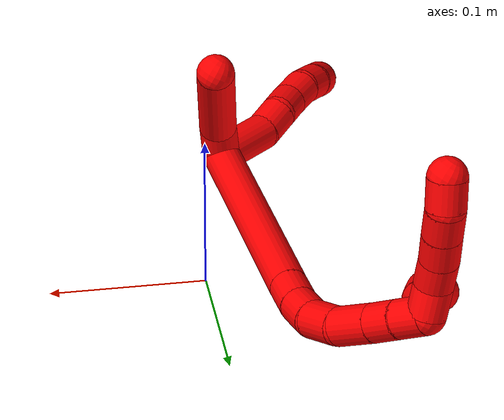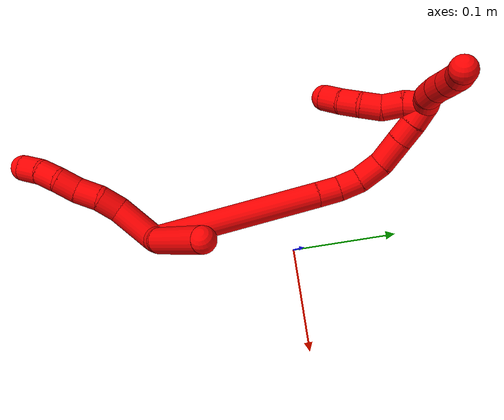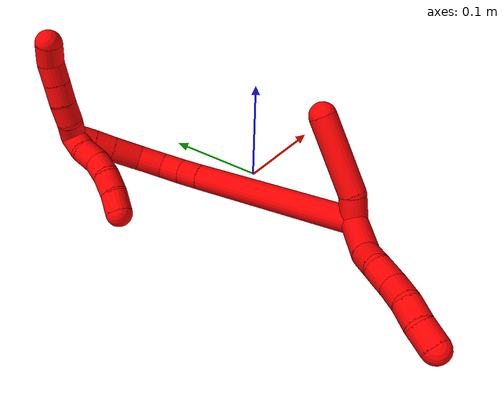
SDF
<sdf version="1.7">
 <world name="default">
  <model name="2">
   <static>0</static>
   <link name="2">
    <collision name="collision-cylinder-e_1_2_8">
     <pose>-0.014928 -0.013431 0.009488 0.955743 -0.737116 -0.394827</pose>
     <geometry><cylinder><radius>0.0125</radius><length>0.04442</length></cylinder></geometry>
     <surface>
      <friction><ode><mu>1.16</mu><mu2>1.16</mu2><slip1>0</slip1><slip2>0</slip2></ode></friction>
      <contact><ode><kp>1e+06</kp><kd>1</kd><max_vel>0</max_vel><min_depth>0.001</min_depth></ode></contact>
     </surface>
    </collision>
    <visual name="visual-cylinder-e_1_2_8">
     <pose>-0.014928 -0.013431 0.009488 0.955743 -0.737116 -0.394827</pose>
     <geometry><cylinder><radius>0.0125</radius><length>0.04442</length></cylinder></geometry>
     <material><ambient>1 0 0 1</ambient></material>
    </visual>
    <collision name="collision-cylinder-e_2_8_9">
     <pose>-0.03479 -0.034329 0.025045 0.888397 -0.473718 -0.228762</pose>
     <geometry><cylinder><radius>0.0125</radius><length>0.021626</length></cylinder></geometry>
     <surface>
      <friction><ode><mu>1.16</mu><mu2>1.16</mu2><slip1>0</slip1><slip2>0</slip2></ode></friction>
      <contact><ode><kp>1e+06</kp><kd>1</kd><max_vel>0</max_vel><min_depth>0.001</min_depth></ode></contact>
     </surface>
    </collision>
    <visual name="visual-cylinder-e_2_8_9">
     <pose>-0.03479 -0.034329 0.025045 0.888397 -0.473718 -0.228762</pose>
     <geometry><cylinder><radius>0.0125</radius><length>0.021626</length></cylinder></geometry>
     <material><ambient>1 0 0 1</ambient></material>
    </visual>
    <collision name="collision-cylinder-e_3_9_10">
     <pose>-0.045016 -0.051248 0.034188 1.25627 -0.489379 -0.358784</pose>
     <geometry><cylinder><radius>0.0125</radius><length>0.022522</length></cylinder></geometry>
     <surface>
      <friction><ode><mu>1.16</mu><mu2>1.16</mu2><slip1>0</slip1><slip2>0</slip2></ode></friction>
      <contact><ode><kp>1e+06</kp><kd>1</kd><max_vel>0</max_vel><min_depth>0.001</min_depth></ode></contact>
     </surface>
    </collision>
    <visual name="visual-cylinder-e_3_9_10">
     <pose>-0.045016 -0.051248 0.034188 1.25627 -0.489379 -0.358784</pose>
     <geometry><cylinder><radius>0.0125</radius><length>0.022522</length></cylinder></geometry>
     <material><ambient>1 0 0 1</ambient></material>
    </visual>
    <collision name="collision-cylinder-e_4_10_11">
     <pose>-0.055665 -0.068514 0.041804 1.04442 -0.534901 -0.312814</pose>
     <geometry><cylinder><radius>0.0125</radius><length>0.02101</length></cylinder></geometry>
     <surface>
      <friction><ode><mu>1.16</mu><mu2>1.16</mu2><slip1>0</slip1><slip2>0</slip2></ode></friction>
      <contact><ode><kp>1e+06</kp><kd>1</kd><max_vel>0</max_vel><min_depth>0.001</min_depth></ode></contact>
     </surface>
    </collision>
    <visual name="visual-cylinder-e_4_10_11">
     <pose>-0.055665 -0.068514 0.041804 1.04442 -0.534901 -0.312814</pose>
     <geometry><cylinder><radius>0.0125</radius><length>0.02101</length></cylinder></geometry>
     <material><ambient>1 0 0 1</ambient></material>
    </visual>
    <collision name="collision-cylinder-e_5_11_12">
     <pose>-0.067173 -0.084125 0.047938 1.36924 -0.658191 -0.54377</pose>
     <geometry><cylinder><radius>0.0125</radius><length>0.020118</length></cylinder></geometry>
     <surface>
      <friction><ode><mu>1.16</mu><mu2>1.16</mu2><slip1>0</slip1><slip2>0</slip2></ode></friction>
      <contact><ode><kp>1e+06</kp><kd>1</kd><max_vel>0</max_vel><min_depth>0.001</min_depth></ode></contact>
     </surface>
    </collision>
    <visual name="visual-cylinder-e_5_11_12">
     <pose>-0.067173 -0.084125 0.047938 1.36924 -0.658191 -0.54377</pose>
     <geometry><cylinder><radius>0.0125</radius><length>0.020118</length></cylinder></geometry>
     <material><ambient>1 0 0 1</ambient></material>
    </visual>
    <collision name="collision-cylinder-e_6_12_6">
     <pose>-0.078593 -0.100588 0.049074 1.62347 -0.545515 -0.573478</pose>
     <geometry><cylinder><radius>0.0125</radius><length>0.020305</length></cylinder></geometry>
     <surface>
      <friction><ode><mu>1.16</mu><mu2>1.16</mu2><slip1>0</slip1><slip2>0</slip2></ode></friction>
      <contact><ode><kp>1e+06</kp><kd>1</kd><max_vel>0</max_vel><min_depth>0.001</min_depth></ode></contact>
     </surface>
    </collision>
    <visual name="visual-cylinder-e_6_12_6">
     <pose>-0.078593 -0.100588 0.049074 1.62347 -0.545515 -0.573478</pose>
     <geometry><cylinder><radius>0.0125</radius><length>0.020305</length></cylinder></geometry>
     <material><ambient>1 0 0 1</ambient></material>
    </visual>
    <collision name="collision-cylinder-e_1_2_13">
     <pose>0.007664 0.004004 0.009666 -0.392723 0.632219 -0.129944</pose>
     <geometry><cylinder><radius>0.0125</radius><length>0.025938</length></cylinder></geometry>
     <surface>
      <friction><ode><mu>1.16</mu><mu2>1.16</mu2><slip1>0</slip1><slip2>0</slip2></ode></friction>
      <contact><ode><kp>1e+06</kp><kd>1</kd><max_vel>0</max_vel><min_depth>0.001</min_depth></ode></contact>
     </surface>
    </collision>
    <visual name="visual-cylinder-e_1_2_13">
     <pose>0.007664 0.004004 0.009666 -0.392723 0.632219 -0.129944</pose>
     <geometry><cylinder><radius>0.0125</radius><length>0.025938</length></cylinder></geometry>
     <material><ambient>1 0 0 1</ambient></material>
    </visual>
    <collision name="collision-cylinder-e_2_13_5">
     <pose>0.034403 0.030447 0.04178 -0.785185 0.541159 -0.228719</pose>
     <geometry><cylinder><radius>0.0125</radius><length>0.074062</length></cylinder></geometry>
     <surface>
      <friction><ode><mu>1.16</mu><mu2>1.16</mu2><slip1>0</slip1><slip2>0</slip2></ode></friction>
      <contact><ode><kp>1e+06</kp><kd>1</kd><max_vel>0</max_vel><min_depth>0.001</min_depth></ode></contact>
     </surface>
    </collision>
    <visual name="visual-cylinder-e_2_13_5">
     <pose>0.034403 0.030447 0.04178 -0.785185 0.541159 -0.228719</pose>
     <geometry><cylinder><radius>0.0125</radius><length>0.074062</length></cylinder></geometry>
     <material><ambient>1 0 0 1</ambient></material>
    </visual>
    <collision name="collision-cylinder-e_1_2_14">
     <pose>-0.008221 0.080078 -0.008154 -1.67228 -0.101778 0.112647</pose>
     <geometry><cylinder><radius>0.0125</radius><length>0.161822</length></cylinder></geometry>
     <surface>
      <friction><ode><mu>1.16</mu><mu2>1.16</mu2><slip1>0</slip1><slip2>0</slip2></ode></friction>
      <contact><ode><kp>1e+06</kp><kd>1</kd><max_vel>0</max_vel><min_depth>0.001</min_depth></ode></contact>
     </surface>
    </collision>
    <visual name="visual-cylinder-e_1_2_14">
     <pose>-0.008221 0.080078 -0.008154 -1.67228 -0.101778 0.112647</pose>
     <geometry><cylinder><radius>0.0125</radius><length>0.161822</length></cylinder></geometry>
     <material><ambient>1 0 0 1</ambient></material>
    </visual>
    <collision name="collision-cylinder-e_2_14_15">
     <pose>-0.017551 0.170901 -0.017166 -1.65036 -0.10262 0.11111</pose>
     <geometry><cylinder><radius>0.0125</radius><length>0.021671</length></cylinder></geometry>
     <surface>
      <friction><ode><mu>1.16</mu><mu2>1.16</mu2><slip1>0</slip1><slip2>0</slip2></ode></friction>
      <contact><ode><kp>1e+06</kp><kd>1</kd><max_vel>0</max_vel><min_depth>0.001</min_depth></ode></contact>
     </surface>
    </collision>
    <visual name="visual-cylinder-e_2_14_15">
     <pose>-0.017551 0.170901 -0.017166 -1.65036 -0.10262 0.11111</pose>
     <geometry><cylinder><radius>0.0125</radius><length>0.021671</length></cylinder></geometry>
     <material><ambient>1 0 0 1</ambient></material>
    </visual>
    <collision name="collision-cylinder-e_3_15_16">
     <pose>-0.020165 0.192218 -0.017124 -1.48607 -0.140805 0.129387</pose>
     <geometry><cylinder><radius>0.0125</radius><length>0.021433</length></cylinder></geometry>
     <surface>
      <friction><ode><mu>1.16</mu><mu2>1.16</mu2><slip1>0</slip1><slip2>0</slip2></ode></friction>
      <contact><ode><kp>1e+06</kp><kd>1</kd><max_vel>0</max_vel><min_depth>0.001</min_depth></ode></contact>
     </surface>
    </collision>
    <visual name="visual-cylinder-e_3_15_16">
     <pose>-0.020165 0.192218 -0.017124 -1.48607 -0.140805 0.129387</pose>
     <geometry><cylinder><radius>0.0125</radius><length>0.021433</length></cylinder></geometry>
     <material><ambient>1 0 0 1</ambient></material>
    </visual>
    <collision name="collision-cylinder-e_4_16_17">
     <pose>-0.024795 0.214497 -0.011505 -1.18745 -0.242712 0.164261</pose>
     <geometry><cylinder><radius>0.0125</radius><length>0.026008</length></cylinder></geometry>
     <surface>
      <friction><ode><mu>1.16</mu><mu2>1.16</mu2><slip1>0</slip1><slip2>0</slip2></ode></friction>
      <contact><ode><kp>1e+06</kp><kd>1</kd><max_vel>0</max_vel><min_depth>0.001</min_depth></ode></contact>
     </surface>
    </collision>
    <visual name="visual-cylinder-e_4_16_17">
     <pose>-0.024795 0.214497 -0.011505 -1.18745 -0.242712 0.164261</pose>
     <geometry><cylinder><radius>0.0125</radius><length>0.026008</length></cylinder></geometry>
     <material><ambient>1 0 0 1</ambient></material>
    </visual>
    <collision name="collision-cylinder-e_5_17_18">
     <pose>-0.032501 0.236624 0.002 -0.870443 -0.324256 0.151807</pose>
     <geometry><cylinder><radius>0.0125</radius><length>0.028756</length></cylinder></geometry>
     <surface>
      <friction><ode><mu>1.16</mu><mu2>1.16</mu2><slip1>0</slip1><slip2>0</slip2></ode></friction>
      <contact><ode><kp>1e+06</kp><kd>1</kd><max_vel>0</max_vel><min_depth>0.001</min_depth></ode></contact>
     </surface>
    </collision>
    <visual name="visual-cylinder-e_5_17_18">
     <pose>-0.032501 0.236624 0.002 -0.870443 -0.324256 0.151807</pose>
     <geometry><cylinder><radius>0.0125</radius><length>0.028756</length></cylinder></geometry>
     <material><ambient>1 0 0 1</ambient></material>
    </visual>
    <collision name="collision-cylinder-e_6_18_19">
     <pose>-0.039991 0.254229 0.017181 -0.843187 -0.293661 0.132463</pose>
     <geometry><cylinder><radius>0.0125</radius><length>0.020099</length></cylinder></geometry>
     <surface>
      <friction><ode><mu>1.16</mu><mu2>1.16</mu2><slip1>0</slip1><slip2>0</slip2></ode></friction>
      <contact><ode><kp>1e+06</kp><kd>1</kd><max_vel>0</max_vel><min_depth>0.001</min_depth></ode></contact>
     </surface>
    </collision>
    <visual name="visual-cylinder-e_6_18_19">
     <pose>-0.039991 0.254229 0.017181 -0.843187 -0.293661 0.132463</pose>
     <geometry><cylinder><radius>0.0125</radius><length>0.020099</length></cylinder></geometry>
     <material><ambient>1 0 0 1</ambient></material>
    </visual>
    <collision name="collision-cylinder-e_7_19_1">
     <pose>-0.046526 0.268189 0.030139 -0.801641 -0.367014 0.156973</pose>
     <geometry><cylinder><radius>0.0125</radius><length>0.02021</length></cylinder></geometry>
     <surface>
      <friction><ode><mu>1.16</mu><mu2>1.16</mu2><slip1>0</slip1><slip2>0</slip2></ode></friction>
      <contact><ode><kp>1e+06</kp><kd>1</kd><max_vel>0</max_vel><min_depth>0.001</min_depth></ode></contact>
     </surface>
    </collision>
    <visual name="visual-cylinder-e_7_19_1">
     <pose>-0.046526 0.268189 0.030139 -0.801641 -0.367014 0.156973</pose>
     <geometry><cylinder><radius>0.0125</radius><length>0.02021</length></cylinder></geometry>
     <material><ambient>1 0 0 1</ambient></material>
    </visual>
    <collision name="collision-cylinder-e_1_1_20">
     <pose>-0.047176 0.274806 0.046245 0.016808 0.302145 0.002559</pose>
     <geometry><cylinder><radius>0.0125</radius><length>0.02</length></cylinder></geometry>
     <surface>
      <friction><ode><mu>1.16</mu><mu2>1.16</mu2><slip1>0</slip1><slip2>0</slip2></ode></friction>
      <contact><ode><kp>1e+06</kp><kd>1</kd><max_vel>0</max_vel><min_depth>0.001</min_depth></ode></contact>
     </surface>
    </collision>
    <visual name="visual-cylinder-e_1_1_20">
     <pose>-0.047176 0.274806 0.046245 0.016808 0.302145 0.002559</pose>
     <geometry><cylinder><radius>0.0125</radius><length>0.02</length></cylinder></geometry>
     <material><ambient>1 0 0 1</ambient></material>
    </visual>
    <collision name="collision-cylinder-e_2_20_21">
     <pose>-0.040156 0.277417 0.064506 -0.307948 0.416375 -0.065549</pose>
     <geometry><cylinder><radius>0.0125</radius><length>0.02</length></cylinder></geometry>
     <surface>
      <friction><ode><mu>1.16</mu><mu2>1.16</mu2><slip1>0</slip1><slip2>0</slip2></ode></friction>
      <contact><ode><kp>1e+06</kp><kd>1</kd><max_vel>0</max_vel><min_depth>0.001</min_depth></ode></contact>
     </surface>
    </collision>
    <visual name="visual-cylinder-e_2_20_21">
     <pose>-0.040156 0.277417 0.064506 -0.307948 0.416375 -0.065549</pose>
     <geometry><cylinder><radius>0.0125</radius><length>0.02</length></cylinder></geometry>
     <material><ambient>1 0 0 1</ambient></material>
    </visual>
    <collision name="collision-cylinder-e_3_21_22">
     <pose>-0.03127 0.283144 0.081457 -0.344499 0.505407 -0.089788</pose>
     <geometry><cylinder><radius>0.0125</radius><length>0.02</length></cylinder></geometry>
     <surface>
      <friction><ode><mu>1.16</mu><mu2>1.16</mu2><slip1>0</slip1><slip2>0</slip2></ode></friction>
      <contact><ode><kp>1e+06</kp><kd>1</kd><max_vel>0</max_vel><min_depth>0.001</min_depth></ode></contact>
     </surface>
    </collision>
    <visual name="visual-cylinder-e_3_21_22">
     <pose>-0.03127 0.283144 0.081457 -0.344499 0.505407 -0.089788</pose>
     <geometry><cylinder><radius>0.0125</radius><length>0.02</length></cylinder></geometry>
     <material><ambient>1 0 0 1</ambient></material>
    </visual>
    <collision name="collision-cylinder-e_4_22_23">
     <pose>-0.02173 0.288999 0.098031 -0.334678 0.48904 -0.084245</pose>
     <geometry><cylinder><radius>0.0125</radius><length>0.02</length></cylinder></geometry>
     <surface>
      <friction><ode><mu>1.16</mu><mu2>1.16</mu2><slip1>0</slip1><slip2>0</slip2></ode></friction>
      <contact><ode><kp>1e+06</kp><kd>1</kd><max_vel>0</max_vel><min_depth>0.001</min_depth></ode></contact>
     </surface>
    </collision>
    <visual name="visual-cylinder-e_4_22_23">
     <pose>-0.02173 0.288999 0.098031 -0.334678 0.48904 -0.084245</pose>
     <geometry><cylinder><radius>0.0125</radius><length>0.02</length></cylinder></geometry>
     <material><ambient>1 0 0 1</ambient></material>
    </visual>
    <collision name="collision-cylinder-e_5_23_4">
     <pose>-0.012472 0.291528 0.115261 0.041591 0.473606 0.010039</pose>
     <geometry><cylinder><radius>0.0125</radius><length>0.02</length></cylinder></geometry>
     <surface>
      <friction><ode><mu>1.16</mu><mu2>1.16</mu2><slip1>0</slip1><slip2>0</slip2></ode></friction>
      <contact><ode><kp>1e+06</kp><kd>1</kd><max_vel>0</max_vel><min_depth>0.001</min_depth></ode></contact>
     </surface>
    </collision>
    <visual name="visual-cylinder-e_5_23_4">
     <pose>-0.012472 0.291528 0.115261 0.041591 0.473606 0.010039</pose>
     <geometry><cylinder><radius>0.0125</radius><length>0.02</length></cylinder></geometry>
     <material><ambient>1 0 0 1</ambient></material>
    </visual>
    <collision name="collision-cylinder-e_1_1_24">
     <pose>-0.054312 0.26588 0.036331 1.6113 -0.429044 -0.44621</pose>
     <geometry><cylinder><radius>0.0125</radius><length>0.02</length></cylinder></geometry>
     <surface>
      <friction><ode><mu>1.16</mu><mu2>1.16</mu2><slip1>0</slip1><slip2>0</slip2></ode></friction>
      <contact><ode><kp>1e+06</kp><kd>1</kd><max_vel>0</max_vel><min_depth>0.001</min_depth></ode></contact>
     </surface>
    </collision>
    <visual name="visual-cylinder-e_1_1_24">
     <pose>-0.054312 0.26588 0.036331 1.6113 -0.429044 -0.44621</pose>
     <geometry><cylinder><radius>0.0125</radius><length>0.02</length></cylinder></geometry>
     <material><ambient>1 0 0 1</ambient></material>
    </visual>
    <collision name="collision-cylinder-e_2_24_25">
     <pose>-0.060329 0.247093 0.034402 1.73039 -0.186837 -0.219076</pose>
     <geometry><cylinder><radius>0.0125</radius><length>0.02</length></cylinder></geometry>
     <surface>
      <friction><ode><mu>1.16</mu><mu2>1.16</mu2><slip1>0</slip1><slip2>0</slip2></ode></friction>
      <contact><ode><kp>1e+06</kp><kd>1</kd><max_vel>0</max_vel><min_depth>0.001</min_depth></ode></contact>
     </surface>
    </collision>
    <visual name="visual-cylinder-e_2_24_25">
     <pose>-0.060329 0.247093 0.034402 1.73039 -0.186837 -0.219076</pose>
     <geometry><cylinder><radius>0.0125</radius><length>0.02</length></cylinder></geometry>
     <material><ambient>1 0 0 1</ambient></material>
    </visual>
    <collision name="collision-cylinder-e_3_25_26">
     <pose>-0.066561 0.22842 0.033453 1.5026 -0.452726 -0.423775</pose>
     <geometry><cylinder><radius>0.0125</radius><length>0.02</length></cylinder></geometry>
     <surface>
      <friction><ode><mu>1.16</mu><mu2>1.16</mu2><slip1>0</slip1><slip2>0</slip2></ode></friction>
      <contact><ode><kp>1e+06</kp><kd>1</kd><max_vel>0</max_vel><min_depth>0.001</min_depth></ode></contact>
     </surface>
    </collision>
    <visual name="visual-cylinder-e_3_25_26">
     <pose>-0.066561 0.22842 0.033453 1.5026 -0.452726 -0.423775</pose>
     <geometry><cylinder><radius>0.0125</radius><length>0.02</length></cylinder></geometry>
     <material><ambient>1 0 0 1</ambient></material>
    </visual>
    <collision name="collision-cylinder-e_4_26_27">
     <pose>-0.076691 0.21139 0.032673 1.74191 -0.613286 -0.719362</pose>
     <geometry><cylinder><radius>0.0125</radius><length>0.02</length></cylinder></geometry>
     <surface>
      <friction><ode><mu>1.16</mu><mu2>1.16</mu2><slip1>0</slip1><slip2>0</slip2></ode></friction>
      <contact><ode><kp>1e+06</kp><kd>1</kd><max_vel>0</max_vel><min_depth>0.001</min_depth></ode></contact>
     </surface>
    </collision>
    <visual name="visual-cylinder-e_4_26_27">
     <pose>-0.076691 0.21139 0.032673 1.74191 -0.613286 -0.719362</pose>
     <geometry><cylinder><radius>0.0125</radius><length>0.02</length></cylinder></geometry>
     <material><ambient>1 0 0 1</ambient></material>
    </visual>
    <collision name="collision-cylinder-e_5_27_3">
     <pose>-0.089209 0.196303 0.029075 1.87488 -0.742664 -0.975212</pose>
     <geometry><cylinder><radius>0.0125</radius><length>0.02</length></cylinder></geometry>
     <surface>
      <friction><ode><mu>1.16</mu><mu2>1.16</mu2><slip1>0</slip1><slip2>0</slip2></ode></friction>
      <contact><ode><kp>1e+06</kp><kd>1</kd><max_vel>0</max_vel><min_depth>0.001</min_depth></ode></contact>
     </surface>
    </collision>
    <visual name="visual-cylinder-e_5_27_3">
     <pose>-0.089209 0.196303 0.029075 1.87488 -0.742664 -0.975212</pose>
     <geometry><cylinder><radius>0.0125</radius><length>0.02</length></cylinder></geometry>
     <material><ambient>1 0 0 1</ambient></material>
    </visual>
    <collision name="collision-sphere-3">
     <pose>-0.095972 0.189274 0.026869 0 -0 0</pose>
     <geometry><sphere><radius>0.0125</radius></sphere></geometry>
     <surface>
      <friction><ode><mu>1.16</mu><mu2>1.16</mu2><slip1>0</slip1><slip2>0</slip2></ode></friction>
      <contact><ode><kp>1e+06</kp><kd>1</kd><max_vel>0</max_vel><min_depth>0.001</min_depth></ode></contact>
     </surface>
    </collision>
    <visual name="visual-sphere-3">
     <pose>-0.095972 0.189274 0.026869 0 -0 0</pose>
     <geometry><sphere><radius>0.0125</radius></sphere></geometry>
     <material><ambient>1 0 0 1</ambient></material>
    </visual>
    <collision name="collision-sphere-27">
     <pose>-0.082446 0.203332 0.031281 0 -0 0</pose>
     <geometry><sphere><radius>0.0125</radius></sphere></geometry>
     <surface>
      <friction><ode><mu>1.16</mu><mu2>1.16</mu2><slip1>0</slip1><slip2>0</slip2></ode></friction>
      <contact><ode><kp>1e+06</kp><kd>1</kd><max_vel>0</max_vel><min_depth>0.001</min_depth></ode></contact>
     </surface>
    </collision>
    <visual name="visual-sphere-27">
     <pose>-0.082446 0.203332 0.031281 0 -0 0</pose>
     <geometry><sphere><radius>0.0125</radius></sphere></geometry>
     <material><ambient>1 0 0 1</ambient></material>
    </visual>
    <collision name="collision-sphere-26">
     <pose>-0.070935 0.219448 0.034066 0 -0 0</pose>
     <geometry><sphere><radius>0.0125</radius></sphere></geometry>
     <surface>
      <friction><ode><mu>1.16</mu><mu2>1.16</mu2><slip1>0</slip1><slip2>0</slip2></ode></friction>
      <contact><ode><kp>1e+06</kp><kd>1</kd><max_vel>0</max_vel><min_depth>0.001</min_depth></ode></contact>
     </surface>
    </collision>
    <visual name="visual-sphere-26">
     <pose>-0.070935 0.219448 0.034066 0 -0 0</pose>
     <geometry><sphere><radius>0.0125</radius></sphere></geometry>
     <material><ambient>1 0 0 1</ambient></material>
    </visual>
    <collision name="collision-sphere-25">
     <pose>-0.062187 0.237391 0.03284 0 -0 0</pose>
     <geometry><sphere><radius>0.0125</radius></sphere></geometry>
     <surface>
      <friction><ode><mu>1.16</mu><mu2>1.16</mu2><slip1>0</slip1><slip2>0</slip2></ode></friction>
      <contact><ode><kp>1e+06</kp><kd>1</kd><max_vel>0</max_vel><min_depth>0.001</min_depth></ode></contact>
     </surface>
    </collision>
    <visual name="visual-sphere-25">
     <pose>-0.062187 0.237391 0.03284 0 -0 0</pose>
     <geometry><sphere><radius>0.0125</radius></sphere></geometry>
     <material><ambient>1 0 0 1</ambient></material>
    </visual>
    <collision name="collision-sphere-24">
     <pose>-0.058472 0.256794 0.035963 0 -0 0</pose>
     <geometry><sphere><radius>0.0125</radius></sphere></geometry>
     <surface>
      <friction><ode><mu>1.16</mu><mu2>1.16</mu2><slip1>0</slip1><slip2>0</slip2></ode></friction>
      <contact><ode><kp>1e+06</kp><kd>1</kd><max_vel>0</max_vel><min_depth>0.001</min_depth></ode></contact>
     </surface>
    </collision>
    <visual name="visual-sphere-24">
     <pose>-0.058472 0.256794 0.035963 0 -0 0</pose>
     <geometry><sphere><radius>0.0125</radius></sphere></geometry>
     <material><ambient>1 0 0 1</ambient></material>
    </visual>
    <collision name="collision-sphere-4">
     <pose>-0.007911 0.291158 0.124152 0 -0 0</pose>
     <geometry><sphere><radius>0.0125</radius></sphere></geometry>
     <surface>
      <friction><ode><mu>1.16</mu><mu2>1.16</mu2><slip1>0</slip1><slip2>0</slip2></ode></friction>
      <contact><ode><kp>1e+06</kp><kd>1</kd><max_vel>0</max_vel><min_depth>0.001</min_depth></ode></contact>
     </surface>
    </collision>
    <visual name="visual-sphere-4">
     <pose>-0.007911 0.291158 0.124152 0 -0 0</pose>
     <geometry><sphere><radius>0.0125</radius></sphere></geometry>
     <material><ambient>1 0 0 1</ambient></material>
    </visual>
    <collision name="collision-sphere-23">
     <pose>-0.017033 0.291899 0.106369 0 -0 0</pose>
     <geometry><sphere><radius>0.0125</radius></sphere></geometry>
     <surface>
      <friction><ode><mu>1.16</mu><mu2>1.16</mu2><slip1>0</slip1><slip2>0</slip2></ode></friction>
      <contact><ode><kp>1e+06</kp><kd>1</kd><max_vel>0</max_vel><min_depth>0.001</min_depth></ode></contact>
     </surface>
    </collision>
    <visual name="visual-sphere-23">
     <pose>-0.017033 0.291899 0.106369 0 -0 0</pose>
     <geometry><sphere><radius>0.0125</radius></sphere></geometry>
     <material><ambient>1 0 0 1</ambient></material>
    </visual>
    <collision name="collision-sphere-22">
     <pose>-0.026428 0.286099 0.089693 0 -0 0</pose>
     <geometry><sphere><radius>0.0125</radius></sphere></geometry>
     <surface>
      <friction><ode><mu>1.16</mu><mu2>1.16</mu2><slip1>0</slip1><slip2>0</slip2></ode></friction>
      <contact><ode><kp>1e+06</kp><kd>1</kd><max_vel>0</max_vel><min_depth>0.001</min_depth></ode></contact>
     </surface>
    </collision>
    <visual name="visual-sphere-22">
     <pose>-0.026428 0.286099 0.089693 0 -0 0</pose>
     <geometry><sphere><radius>0.0125</radius></sphere></geometry>
     <material><ambient>1 0 0 1</ambient></material>
    </visual>
    <collision name="collision-sphere-21">
     <pose>-0.036112 0.280189 0.073222 0 -0 0</pose>
     <geometry><sphere><radius>0.0125</radius></sphere></geometry>
     <surface>
      <friction><ode><mu>1.16</mu><mu2>1.16</mu2><slip1>0</slip1><slip2>0</slip2></ode></friction>
      <contact><ode><kp>1e+06</kp><kd>1</kd><max_vel>0</max_vel><min_depth>0.001</min_depth></ode></contact>
     </surface>
    </collision>
    <visual name="visual-sphere-21">
     <pose>-0.036112 0.280189 0.073222 0 -0 0</pose>
     <geometry><sphere><radius>0.0125</radius></sphere></geometry>
     <material><ambient>1 0 0 1</ambient></material>
    </visual>
    <collision name="collision-sphere-20">
     <pose>-0.0442 0.274645 0.055791 0 -0 0</pose>
     <geometry><sphere><radius>0.0125</radius></sphere></geometry>
     <surface>
      <friction><ode><mu>1.16</mu><mu2>1.16</mu2><slip1>0</slip1><slip2>0</slip2></ode></friction>
      <contact><ode><kp>1e+06</kp><kd>1</kd><max_vel>0</max_vel><min_depth>0.001</min_depth></ode></contact>
     </surface>
    </collision>
    <visual name="visual-sphere-20">
     <pose>-0.0442 0.274645 0.055791 0 -0 0</pose>
     <geometry><sphere><radius>0.0125</radius></sphere></geometry>
     <material><ambient>1 0 0 1</ambient></material>
    </visual>
    <collision name="collision-sphere-12">
     <pose>-0.073326 -0.091921 0.049531 0 -0 0</pose>
     <geometry><sphere><radius>0.0125</radius></sphere></geometry>
     <surface>
      <friction><ode><mu>1.16</mu><mu2>1.16</mu2><slip1>0</slip1><slip2>0</slip2></ode></friction>
      <contact><ode><kp>1e+06</kp><kd>1</kd><max_vel>0</max_vel><min_depth>0.001</min_depth></ode></contact>
     </surface>
    </collision>
    <visual name="visual-sphere-12">
     <pose>-0.073326 -0.091921 0.049531 0 -0 0</pose>
     <geometry><sphere><radius>0.0125</radius></sphere></geometry>
     <material><ambient>1 0 0 1</ambient></material>
    </visual>
    <collision name="collision-sphere-11">
     <pose>-0.06102 -0.076328 0.046344 0 -0 0</pose>
     <geometry><sphere><radius>0.0125</radius></sphere></geometry>
     <surface>
      <friction><ode><mu>1.16</mu><mu2>1.16</mu2><slip1>0</slip1><slip2>0</slip2></ode></friction>
      <contact><ode><kp>1e+06</kp><kd>1</kd><max_vel>0</max_vel><min_depth>0.001</min_depth></ode></contact>
     </surface>
    </collision>
    <visual name="visual-sphere-11">
     <pose>-0.06102 -0.076328 0.046344 0 -0 0</pose>
     <geometry><sphere><radius>0.0125</radius></sphere></geometry>
     <material><ambient>1 0 0 1</ambient></material>
    </visual>
    <collision name="collision-sphere-10">
     <pose>-0.050309 -0.060699 0.037263 0 -0 0</pose>
     <geometry><sphere><radius>0.0125</radius></sphere></geometry>
     <surface>
      <friction><ode><mu>1.16</mu><mu2>1.16</mu2><slip1>0</slip1><slip2>0</slip2></ode></friction>
      <contact><ode><kp>1e+06</kp><kd>1</kd><max_vel>0</max_vel><min_depth>0.001</min_depth></ode></contact>
     </surface>
    </collision>
    <visual name="visual-sphere-10">
     <pose>-0.050309 -0.060699 0.037263 0 -0 0</pose>
     <geometry><sphere><radius>0.0125</radius></sphere></geometry>
     <material><ambient>1 0 0 1</ambient></material>
    </visual>
    <collision name="collision-sphere-9">
     <pose>-0.039722 -0.041796 0.031113 0 -0 0</pose>
     <geometry><sphere><radius>0.0125</radius></sphere></geometry>
     <surface>
      <friction><ode><mu>1.16</mu><mu2>1.16</mu2><slip1>0</slip1><slip2>0</slip2></ode></friction>
      <contact><ode><kp>1e+06</kp><kd>1</kd><max_vel>0</max_vel><min_depth>0.001</min_depth></ode></contact>
     </surface>
    </collision>
    <visual name="visual-sphere-9">
     <pose>-0.039722 -0.041796 0.031113 0 -0 0</pose>
     <geometry><sphere><radius>0.0125</radius></sphere></geometry>
     <material><ambient>1 0 0 1</ambient></material>
    </visual>
    <collision name="collision-sphere-2">
     <geometry><sphere><radius>0.0125</radius></sphere></geometry>
     <surface>
      <friction><ode><mu>1.16</mu><mu2>1.16</mu2><slip1>0</slip1><slip2>0</slip2></ode></friction>
      <contact><ode><kp>1e+06</kp><kd>1</kd><max_vel>0</max_vel><min_depth>0.001</min_depth></ode></contact>
     </surface>
    </collision>
    <visual name="visual-sphere-2">
     <geometry><sphere><radius>0.0125</radius></sphere></geometry>
     <material><ambient>1 0 0 1</ambient></material>
    </visual>
    <collision name="collision-sphere-19">
     <pose>-0.0429 0.261412 0.023579 0 -0 0</pose>
     <geometry><sphere><radius>0.0125</radius></sphere></geometry>
     <surface>
      <friction><ode><mu>1.16</mu><mu2>1.16</mu2><slip1>0</slip1><slip2>0</slip2></ode></friction>
      <contact><ode><kp>1e+06</kp><kd>1</kd><max_vel>0</max_vel><min_depth>0.001</min_depth></ode></contact>
     </surface>
    </collision>
    <visual name="visual-sphere-19">
     <pose>-0.0429 0.261412 0.023579 0 -0 0</pose>
     <geometry><sphere><radius>0.0125</radius></sphere></geometry>
     <material><ambient>1 0 0 1</ambient></material>
    </visual>
    <collision name="collision-sphere-8">
     <pose>-0.029857 -0.026862 0.018977 0 -0 0</pose>
     <geometry><sphere><radius>0.0125</radius></sphere></geometry>
     <surface>
      <friction><ode><mu>1.16</mu><mu2>1.16</mu2><slip1>0</slip1><slip2>0</slip2></ode></friction>
      <contact><ode><kp>1e+06</kp><kd>1</kd><max_vel>0</max_vel><min_depth>0.001</min_depth></ode></contact>
     </surface>
    </collision>
    <visual name="visual-sphere-8">
     <pose>-0.029857 -0.026862 0.018977 0 -0 0</pose>
     <geometry><sphere><radius>0.0125</radius></sphere></geometry>
     <material><ambient>1 0 0 1</ambient></material>
    </visual>
    <collision name="collision-sphere-6">
     <pose>-0.083861 -0.109255 0.048617 0 -0 0</pose>
     <geometry><sphere><radius>0.0125</radius></sphere></geometry>
     <surface>
      <friction><ode><mu>1.16</mu><mu2>1.16</mu2><slip1>0</slip1><slip2>0</slip2></ode></friction>
      <contact><ode><kp>1e+06</kp><kd>1</kd><max_vel>0</max_vel><min_depth>0.001</min_depth></ode></contact>
     </surface>
    </collision>
    <visual name="visual-sphere-6">
     <pose>-0.083861 -0.109255 0.048617 0 -0 0</pose>
     <geometry><sphere><radius>0.0125</radius></sphere></geometry>
     <material><ambient>1 0 0 1</ambient></material>
    </visual>
    <collision name="collision-sphere-13">
     <pose>0.015327 0.008008 0.019331 0 -0 0</pose>
     <geometry><sphere><radius>0.0125</radius></sphere></geometry>
     <surface>
      <friction><ode><mu>1.16</mu><mu2>1.16</mu2><slip1>0</slip1><slip2>0</slip2></ode></friction>
      <contact><ode><kp>1e+06</kp><kd>1</kd><max_vel>0</max_vel><min_depth>0.001</min_depth></ode></contact>
     </surface>
    </collision>
    <visual name="visual-sphere-13">
     <pose>0.015327 0.008008 0.019331 0 -0 0</pose>
     <geometry><sphere><radius>0.0125</radius></sphere></geometry>
     <material><ambient>1 0 0 1</ambient></material>
    </visual>
    <collision name="collision-sphere-5">
     <pose>0.053479 0.052885 0.064228 0 -0 0</pose>
     <geometry><sphere><radius>0.0125</radius></sphere></geometry>
     <surface>
      <friction><ode><mu>1.16</mu><mu2>1.16</mu2><slip1>0</slip1><slip2>0</slip2></ode></friction>
      <contact><ode><kp>1e+06</kp><kd>1</kd><max_vel>0</max_vel><min_depth>0.001</min_depth></ode></contact>
     </surface>
    </collision>
    <visual name="visual-sphere-5">
     <pose>0.053479 0.052885 0.064228 0 -0 0</pose>
     <geometry><sphere><radius>0.0125</radius></sphere></geometry>
     <material><ambient>1 0 0 1</ambient></material>
    </visual>
    <collision name="collision-sphere-14">
     <pose>-0.016441 0.160156 -0.016309 0 -0 0</pose>
     <geometry><sphere><radius>0.0125</radius></sphere></geometry>
     <surface>
      <friction><ode><mu>1.16</mu><mu2>1.16</mu2><slip1>0</slip1><slip2>0</slip2></ode></friction>
      <contact><ode><kp>1e+06</kp><kd>1</kd><max_vel>0</max_vel><min_depth>0.001</min_depth></ode></contact>
     </surface>
    </collision>
    <visual name="visual-sphere-14">
     <pose>-0.016441 0.160156 -0.016309 0 -0 0</pose>
     <geometry><sphere><radius>0.0125</radius></sphere></geometry>
     <material><ambient>1 0 0 1</ambient></material>
    </visual>
    <collision name="collision-sphere-15">
     <pose>-0.018661 0.181645 -0.018022 0 -0 0</pose>
     <geometry><sphere><radius>0.0125</radius></sphere></geometry>
     <surface>
      <friction><ode><mu>1.16</mu><mu2>1.16</mu2><slip1>0</slip1><slip2>0</slip2></ode></friction>
      <contact><ode><kp>1e+06</kp><kd>1</kd><max_vel>0</max_vel><min_depth>0.001</min_depth></ode></contact>
     </surface>
    </collision>
    <visual name="visual-sphere-15">
     <pose>-0.018661 0.181645 -0.018022 0 -0 0</pose>
     <geometry><sphere><radius>0.0125</radius></sphere></geometry>
     <material><ambient>1 0 0 1</ambient></material>
    </visual>
    <collision name="collision-sphere-16">
     <pose>-0.021669 0.20279 -0.016226 0 -0 0</pose>
     <geometry><sphere><radius>0.0125</radius></sphere></geometry>
     <surface>
      <friction><ode><mu>1.16</mu><mu2>1.16</mu2><slip1>0</slip1><slip2>0</slip2></ode></friction>
      <contact><ode><kp>1e+06</kp><kd>1</kd><max_vel>0</max_vel><min_depth>0.001</min_depth></ode></contact>
     </surface>
    </collision>
    <visual name="visual-sphere-16">
     <pose>-0.021669 0.20279 -0.016226 0 -0 0</pose>
     <geometry><sphere><radius>0.0125</radius></sphere></geometry>
     <material><ambient>1 0 0 1</ambient></material>
    </visual>
    <collision name="collision-sphere-17">
     <pose>-0.02792 0.226203 -0.006784 0 -0 0</pose>
     <geometry><sphere><radius>0.0125</radius></sphere></geometry>
     <surface>
      <friction><ode><mu>1.16</mu><mu2>1.16</mu2><slip1>0</slip1><slip2>0</slip2></ode></friction>
      <contact><ode><kp>1e+06</kp><kd>1</kd><max_vel>0</max_vel><min_depth>0.001</min_depth></ode></contact>
     </surface>
    </collision>
    <visual name="visual-sphere-17">
     <pose>-0.02792 0.226203 -0.006784 0 -0 0</pose>
     <geometry><sphere><radius>0.0125</radius></sphere></geometry>
     <material><ambient>1 0 0 1</ambient></material>
    </visual>
    <collision name="collision-sphere-18">
     <pose>-0.037082 0.247045 0.010783 0 -0 0</pose>
     <geometry><sphere><radius>0.0125</radius></sphere></geometry>
     <surface>
      <friction><ode><mu>1.16</mu><mu2>1.16</mu2><slip1>0</slip1><slip2>0</slip2></ode></friction>
      <contact><ode><kp>1e+06</kp><kd>1</kd><max_vel>0</max_vel><min_depth>0.001</min_depth></ode></contact>
     </surface>
    </collision>
    <visual name="visual-sphere-18">
     <pose>-0.037082 0.247045 0.010783 0 -0 0</pose>
     <geometry><sphere><radius>0.0125</radius></sphere></geometry>
     <material><ambient>1 0 0 1</ambient></material>
    </visual>
    <collision name="collision-sphere-1">
     <pose>-0.050152 0.274966 0.0367 0 -0 0</pose>
     <geometry><sphere><radius>0.0125</radius></sphere></geometry>
     <surface>
      <friction><ode><mu>1.16</mu><mu2>1.16</mu2><slip1>0</slip1><slip2>0</slip2></ode></friction>
      <contact><ode><kp>1e+06</kp><kd>1</kd><max_vel>0</max_vel><min_depth>0.001</min_depth></ode></contact>
     </surface>
    </collision>
    <visual name="visual-sphere-1">
     <pose>-0.050152 0.274966 0.0367 0 -0 0</pose>
     <geometry><sphere><radius>0.0125</radius></sphere></geometry>
     <material><ambient>1 0 0 1</ambient></material>
    </visual>
    <inertial>
     <pose>-0.025685 0.119581 0.024 0 -0 0</pose>
     <mass>0.75</mass>
     <inertia><ixx>0.000443</ixx><ixy>0</ixy><ixz>0</ixz><iyy>6e-05</iyy><iyz>0</iyz><izz>-0.000325</izz></inertia>
    </inertial>
   </link>
   <pose>-0.030258 -0.130433 0.018287 0.099149 -0.522056 0.026845</pose>
  </model>
 </world>
</sdf>
